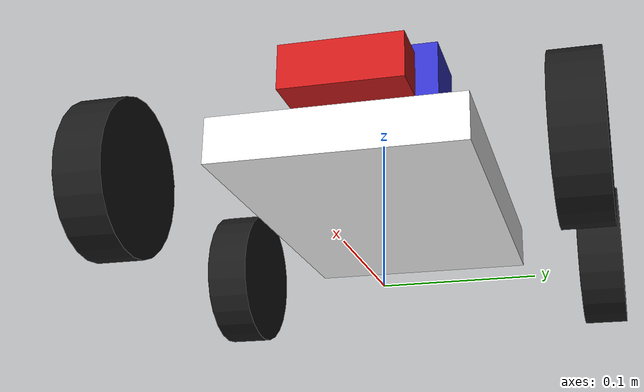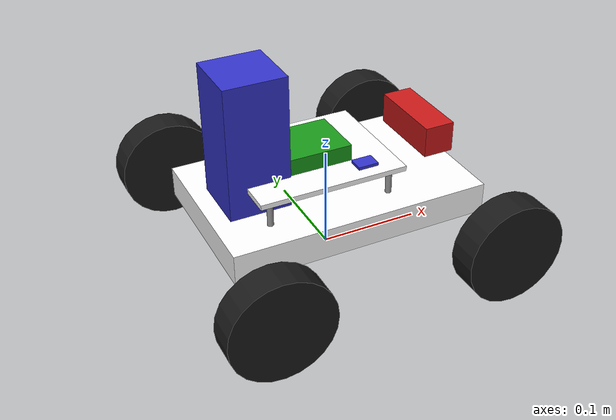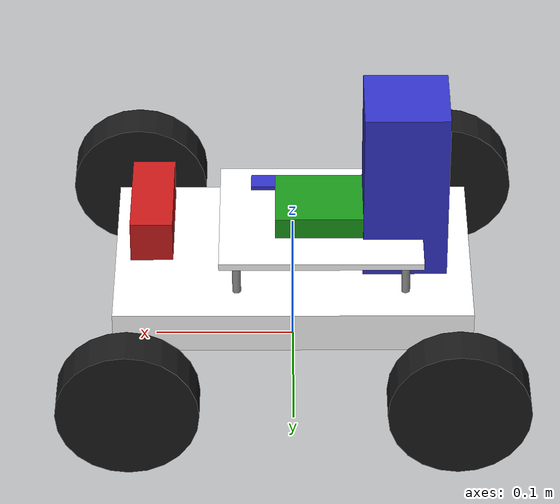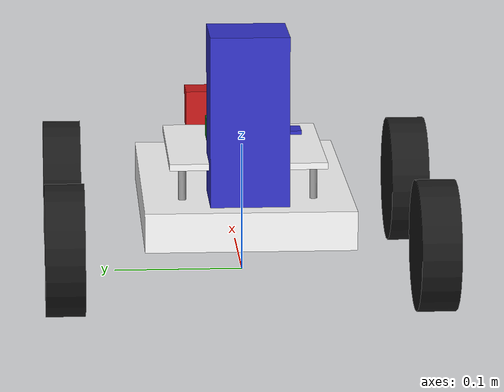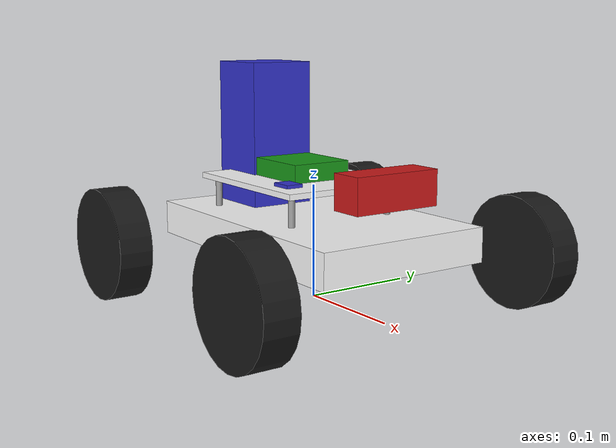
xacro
<?xml version="1.0"?>
<robot name="custom_rover" xmlns:xacro="http://ros.org/wiki/xacro">

  <!-- MATERIALS                                                                 -->
  <material name="white">
    <color rgba="1.0 1.0 1.0 1.0"/>
  </material>
  <material name="black">
    <color rgba="0.1 0.1 0.1 1.0"/>
  </material>
  <material name="blue">
    <color rgba="0.2 0.2 0.8 1.0"/>
  </material>
  <material name="grey">
    <color rgba="0.6 0.6 0.6 1.0"/>
  </material>
  <material name="green">
    <color rgba="0.1 0.6 0.1 1.0"/>
  </material>
  <material name="red">
    <color rgba="0.8 0.1 0.1 1.0"/>
  </material>

  <!-- BASE FOOTPRINT & BASE LINK                                                -->
  <link name="base_footprint"/>

  <joint name="base_joint" type="fixed">
    <parent link="base_footprint"/>
    <child link="base_link"/>
    <origin xyz="0 0 0.06" rpy="0 0 0"/>
  </joint>

  <link name="base_link">
    <visual>
      <origin xyz="0 0 0" rpy="0 0 0"/>
      <geometry>
        <box size="0.255 0.16 0.03"/>
      </geometry>
      <material name="white"/>
    </visual>
    <collision>
      <origin xyz="0 0 0" rpy="0 0 0"/>
      <geometry>
        <box size="0.255 0.16 0.03"/>
      </geometry>
    </collision>
    <inertial>
      <origin xyz="0 0 0" rpy="0 0 0"/>
      <mass value="1.5"/>
      <inertia ixx="0.00331" ixy="0.0" ixz="0.0" iyy="0.00824" iyz="0.0" izz="0.01133"/>
    </inertial>
  </link>

  <!-- CHASSIS EXTENSIONS: TOP PLATE & RASPBERRY PI                             -->
  <link name="top_plate">
    <visual>
      <origin xyz="0 0 0" rpy="0 0 0"/>
      <geometry>
        <box size="0.145 0.12 0.005"/>
      </geometry>
      <material name="white"/>
    </visual>
    <collision>
      <origin xyz="0 0 0" rpy="0 0 0"/>
      <geometry>
        <box size="0.145 0.12 0.005"/>
      </geometry>
    </collision>
    <inertial>
      <origin xyz="0 0 0" rpy="0 0 0"/>
      <mass value="0.2"/>
      <inertia ixx="0.00024" ixy="0.0" ixz="0.0" iyy="0.00035" iyz="0.0" izz="0.00059"/>
    </inertial>
  </link>

  <joint name="top_plate_joint" type="fixed">
    <parent link="base_link"/>
    <child link="top_plate"/>
    <origin xyz="-0.02 0 0.0425" rpy="0 0 0"/>
  </joint>

  <xacro:macro name="standoff" params="prefix x y">
    <link name="${prefix}_standoff">
      <visual>
        <origin xyz="0 0 0" rpy="0 0 0"/>
        <geometry>
          <cylinder radius="0.003" length="0.025"/>
        </geometry>
        <material name="grey"/>
      </visual>
      <inertial>
        <mass value="0.01"/>
        <inertia ixx="0.000001" ixy="0" ixz="0" iyy="0.000001" iyz="0" izz="0.000001"/>
      </inertial>
    </link>
    <joint name="${prefix}_standoff_joint" type="fixed">
      <parent link="top_plate"/>
      <child link="${prefix}_standoff"/>
      <origin xyz="${x} ${y} -0.015" rpy="0 0 0"/>
    </joint>
  </xacro:macro>

  <xacro:standoff prefix="front_left" x="0.06" y="0.05" />
  <xacro:standoff prefix="front_right" x="0.06" y="-0.05" />
  <xacro:standoff prefix="rear_left" x="-0.06" y="0.05" />
  <xacro:standoff prefix="rear_right" x="-0.06" y="-0.05" />

  <link name="raspberry_pi">
    <visual>
      <origin xyz="0 0 0" rpy="0 0 0"/>
      <geometry>
        <box size="0.085 0.056 0.016"/>
      </geometry>
      <material name="green"/>
    </visual>
    <inertial>
      <mass value="0.05"/>
      <inertia ixx="0.000014" ixy="0" ixz="0" iyy="0.000031" iyz="0" izz="0.000043"/>
    </inertial>
  </link>

  <joint name="rpi_joint" type="fixed">
    <parent link="top_plate"/>
    <child link="raspberry_pi"/>
    <origin xyz="-0.01 0 0.0105" rpy="0 0 0"/>
  </joint>

  <!-- SENSORS: IMU LINK (Defined for future use, IMU plugin included)          -->
  <link name="imu_link">
    <visual>
      <origin xyz="0 0 0" rpy="0 0 0"/>
      <geometry>
        <box size="0.02 0.015 0.003"/>
      </geometry>
      <material name="blue"/>
    </visual>
    <inertial>
      <mass value="0.01"/>
      <inertia ixx="0.000001" ixy="0" ixz="0" iyy="0.000001" iyz="0" izz="0.000001"/>
    </inertial>
  </link>

  <joint name="imu_joint" type="fixed">
    <parent link="top_plate"/>
    <child link="imu_link"/>
    <origin xyz="0.04 -0.04 0.004" rpy="0 0 0"/>
  </joint>

  <!-- SENSORS: LIDAR (SDKELI LS2027 - 270 deg FOV, 20m range)                   -->
  <link name="laser">
    <visual>
      <origin xyz="0 0 0" rpy="0 0 0"/>
      <geometry>
        <box size="0.06 0.06 0.13"/>
      </geometry>
      <material name="blue"/>
    </visual>
    <collision>
      <origin xyz="0 0 0" rpy="0 0 0"/>
      <geometry>
        <box size="0.06 0.06 0.13"/>
      </geometry>
    </collision>
    <inertial>
      <origin xyz="0 0 0" rpy="0 0 0"/>
      <mass value="0.2"/>
      <inertia ixx="0.00034" ixy="0.0" ixz="0.0" iyy="0.00034" iyz="0.0" izz="0.00012"/>
    </inertial>
  </link>

  <joint name="lidar_joint" type="fixed">
    <parent link="base_link"/>
    <child link="laser"/>
    <origin xyz="-0.08 0 0.08" rpy="0 0 0"/>
  </joint>

  <!-- SENSORS: CAMERA LINK & OPTICAL FRAME                                      -->
  <link name="camera_link">
    <visual>
      <origin xyz="0 0 0" rpy="0 0 0"/>
      <geometry>
        <box size="0.03 0.08 0.03"/>
      </geometry>
      <material name="red"/>
    </visual>
    <collision>
      <origin xyz="0 0 0" rpy="0 0 0"/>
      <geometry>
        <box size="0.03 0.08 0.03"/>
      </geometry>
    </collision>
    <inertial>
      <mass value="0.05"/>
      <inertia ixx="0.00003" ixy="0" ixz="0" iyy="0.00001" iyz="0" izz="0.00003"/>
    </inertial>
  </link>

  <joint name="camera_joint" type="fixed">
    <parent link="base_link"/>
    <child link="camera_link"/>
    <origin xyz="0.10 0 0.05" rpy="0 0 0"/>
  </joint>

  <link name="camera_optical"/>

  <joint name="camera_optical_joint" type="fixed">
    <parent link="camera_link"/>
    <child link="camera_optical"/>
    <origin xyz="0 0 0" rpy="-1.57079632679 0 -1.57079632679"/>
  </joint>

  <!-- WHEELS (Radius = 0.050m, Width = 0.03m, Base = 0.28m)                                   -->
  <xacro:macro name="wheel" params="prefix x_reflect y_reflect">
    <link name="${prefix}_wheel">
      <visual>
        <origin xyz="0 0 0" rpy="${pi/2} 0 0"/>
        <geometry>
          <cylinder radius="0.050" length="0.03"/>
        </geometry>
        <material name="black"/>
      </visual>
      <collision>
        <origin xyz="0 0 0" rpy="${pi/2} 0 0"/>
        <geometry>
          <cylinder radius="0.050" length="0.03"/>
        </geometry>
      </collision>
      <inertial>
        <origin xyz="0 0 0" rpy="${pi/2} 0 0"/>
        <mass value="0.1"/>
        <inertia ixx="0.000070" ixy="0.0" ixz="0.0" iyy="0.000070" iyz="0.0" izz="0.000125"/>
      </inertial>
    </link>

    <joint name="${prefix}_wheel_joint" type="continuous">
      <parent link="base_link"/>
      <child link="${prefix}_wheel"/>
      <origin xyz="${x_reflect * 0.115} ${y_reflect * 0.140} -0.015" rpy="0 0 0"/>
      <axis xyz="0 1 0"/>
      <dynamics damping="0.01" friction="0.1"/>
    </joint>

    <gazebo reference="${prefix}_wheel">
      <mu1>0.05</mu1>
      <mu2>0.05</mu2>
      <kp>100000.0</kp>
      <kd>10.0</kd>
    </gazebo>
  </xacro:macro>

  <xacro:wheel prefix="front_left"  x_reflect="1"  y_reflect="1"  />
  <xacro:wheel prefix="front_right" x_reflect="1"  y_reflect="-1" />
  <xacro:wheel prefix="rear_left"   x_reflect="-1" y_reflect="1"  />
  <xacro:wheel prefix="rear_right"  x_reflect="-1" y_reflect="-1" />

  <!-- GAZEBO SIM PLUGINS & SENSOR SPECIFICATIONS                                -->
  <gazebo>
    <!-- Front Pair Diff Drive Plugin (Single Authoritative Odometry Publisher) -->
    <plugin filename="gz-sim-diff-drive-system" name="gz::sim::systems::DiffDrive">
      <left_joint>front_left_wheel_joint</left_joint>
      <right_joint>front_right_wheel_joint</right_joint>
      <wheel_separation>0.28</wheel_separation>
      <wheel_radius>0.050</wheel_radius>
      <odom_publish_frequency>30</odom_publish_frequency>
      <topic>/cmd_vel</topic>
      <odom_topic>/odom</odom_topic>
      <frame_id>odom</frame_id>
      <child_frame_id>base_footprint</child_frame_id>
    </plugin>

    <!-- Rear Pair Diff Drive Plugin (Motor Actuation Only) -->
    <plugin filename="gz-sim-diff-drive-system" name="gz::sim::systems::DiffDrive">
      <left_joint>rear_left_wheel_joint</left_joint>
      <right_joint>rear_right_wheel_joint</right_joint>
      <wheel_separation>0.28</wheel_separation>
      <wheel_radius>0.050</wheel_radius>
      <odom_publish_frequency>0</odom_publish_frequency>
      <topic>/cmd_vel</topic>
    </plugin>

    <!-- Joint State Publisher Plugin -->
    <plugin filename="gz-sim-joint-state-publisher-system" name="gz::sim::systems::JointStatePublisher">
      <topic>/joint_states</topic>
    </plugin>

    <!-- Sensors System Plugin -->
    <plugin filename="gz-sim-sensors-system" name="gz::sim::systems::Sensors">
      <render_engine>ogre2</render_engine>
    </plugin>

    <!-- IMU System Plugin -->
    <plugin filename="gz-sim-imu-system" name="gz::sim::systems::Imu">
    </plugin>
  </gazebo>

  <!-- Gazebo LiDAR Sensor (SDKELI LS2027: 270 deg FOV, 20m Range) -->
  <gazebo reference="laser">
    <sensor name="gpu_lidar" type="gpu_lidar">
      <update_rate>15</update_rate>
      <topic>/scan</topic>
      <gz_frame_id>laser</gz_frame_id>
      <lidar>
        <scan>
          <horizontal>
            <samples>720</samples>
            <resolution>1</resolution>
            <min_angle>-2.356194</min_angle> <!-- -135 degrees -->
            <max_angle>2.356194</max_angle>  <!-- +135 degrees -->
          </horizontal>
        </scan>
        <range>
          <min>0.10</min>
          <max>20.0</max>
          <resolution>0.01</resolution>
        </range>
        <noise>
          <type>gaussian</type>
          <mean>0.0</mean>
          <stddev>0.01</stddev>
        </noise>
      </lidar>
    </sensor>
  </gazebo>

  <!-- Gazebo RGB Camera Sensor -->
  <gazebo reference="camera_link">
    <sensor name="rgb_camera" type="camera">
      <update_rate>30</update_rate>
      <topic>/image_raw</topic>
      <gz_frame_id>camera_optical</gz_frame_id>
      <camera>
        <horizontal_fov>1.089</horizontal_fov>
        <image>
          <width>640</width>
          <height>480</height>
          <format>R8G8B8</format>
        </image>
        <clip>
          <near>0.05</near>
          <far>8.0</far>
        </clip>
      </camera>
    </sensor>
  </gazebo>

  <!-- Gazebo IMU Sensor (Prepared on imu_link) -->
  <gazebo reference="imu_link">
    <sensor name="imu_sensor" type="imu">
      <update_rate>50</update_rate>
      <topic>/imu/data</topic>
      <gz_frame_id>imu_link</gz_frame_id>
      <imu>
        <angular_velocity>
          <x><noise type="gaussian"><stddev>0.0002</stddev></noise></x>
          <y><noise type="gaussian"><stddev>0.0002</stddev></noise></y>
          <z><noise type="gaussian"><stddev>0.0002</stddev></noise></z>
        </angular_velocity>
        <linear_acceleration>
          <x><noise type="gaussian"><stddev>0.01</stddev></noise></x>
          <y><noise type="gaussian"><stddev>0.01</stddev></noise></y>
          <z><noise type="gaussian"><stddev>0.01</stddev></noise></z>
        </linear_acceleration>
      </imu>
    </sensor>
  </gazebo>

</robot>
